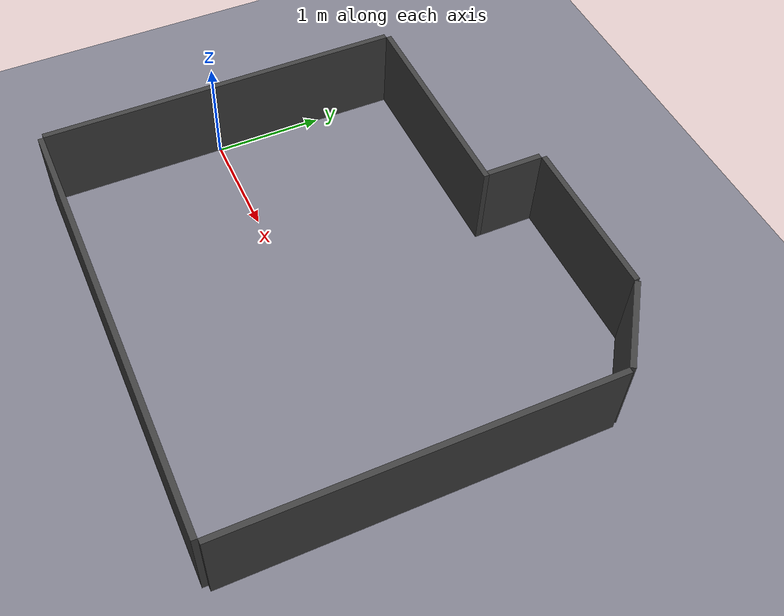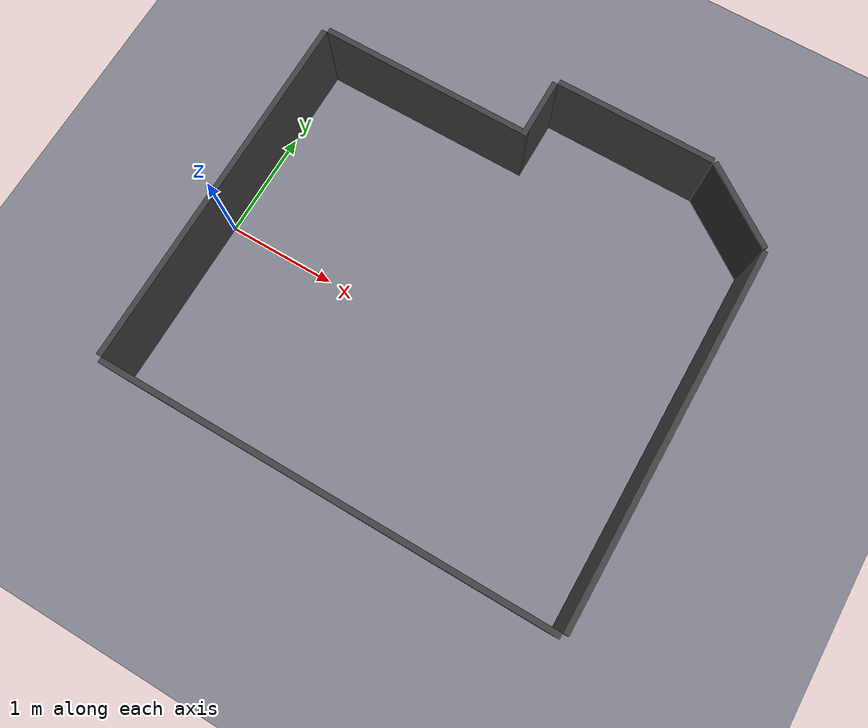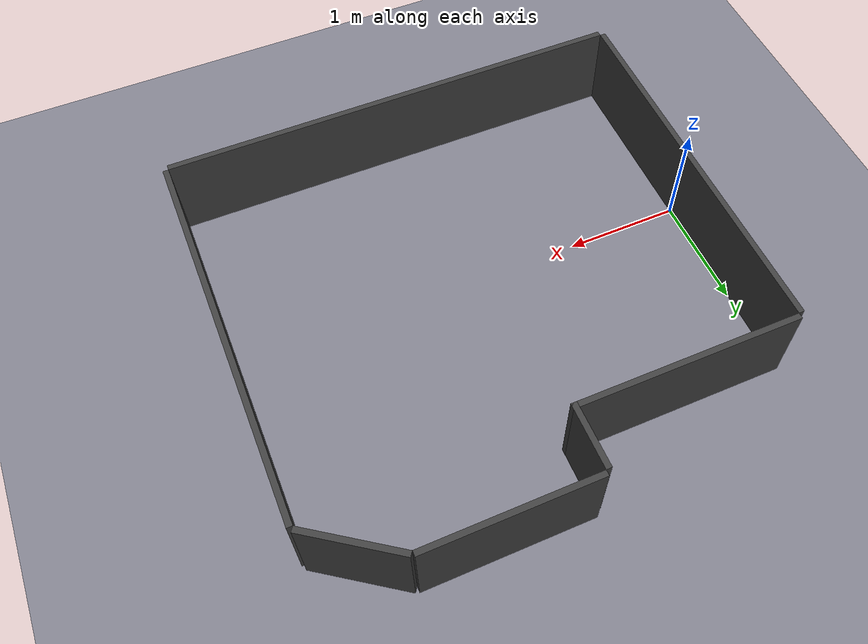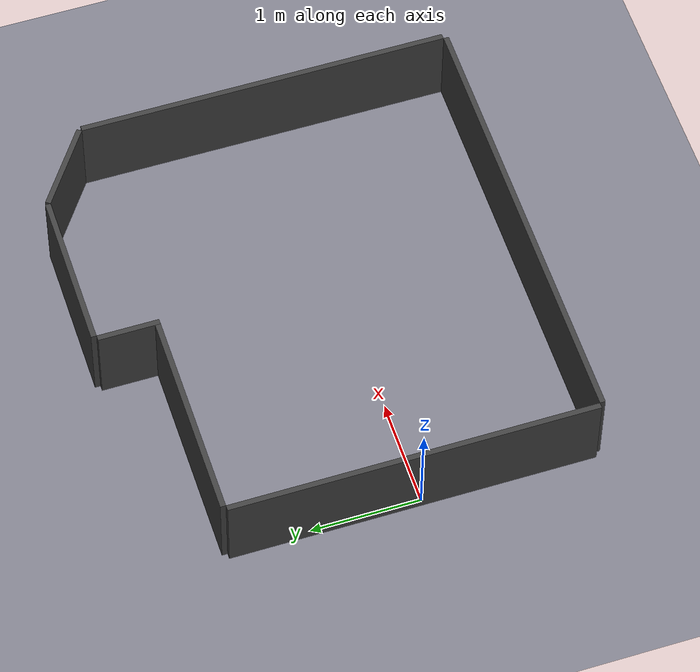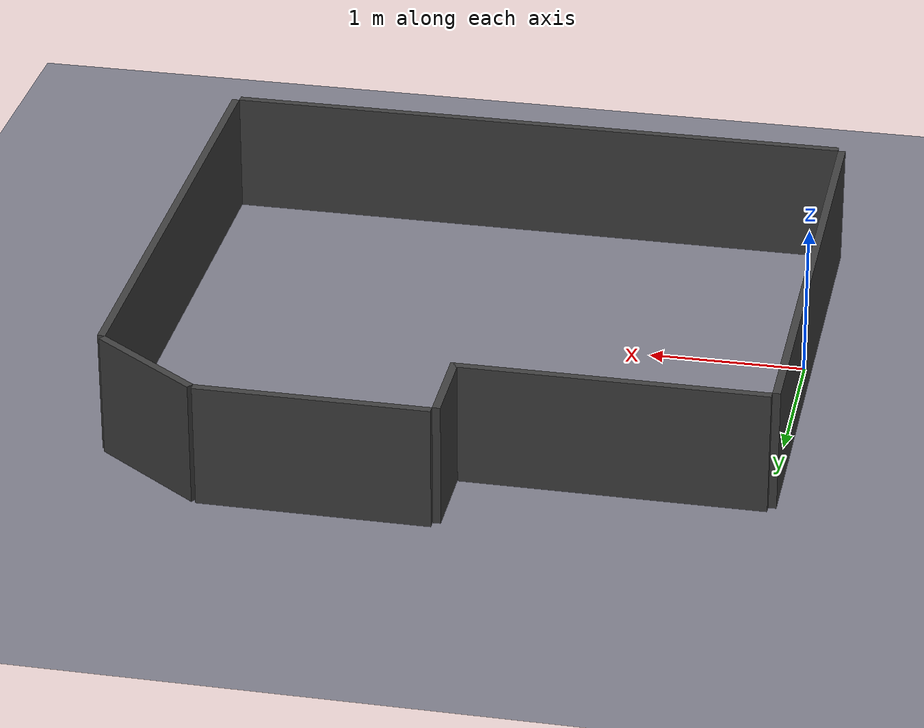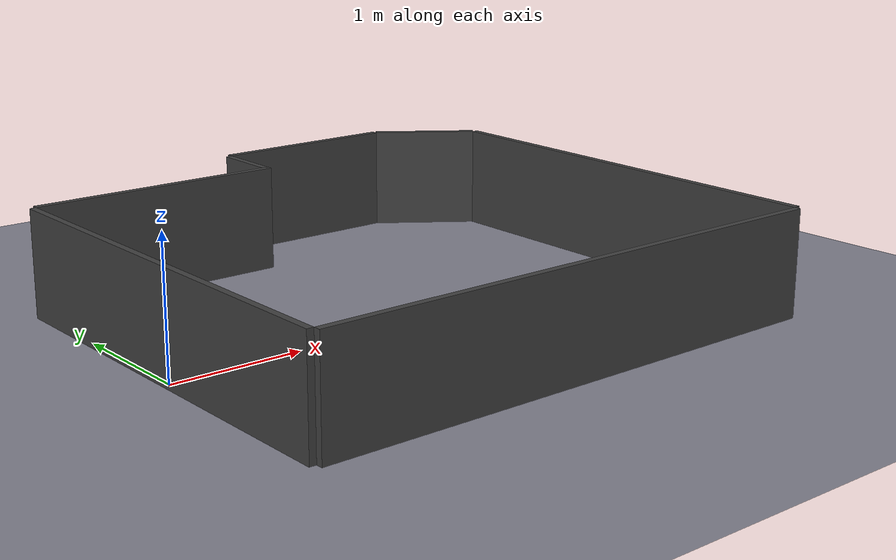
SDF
<?xml version="1.0" encoding="UTF-8"?>
<sdf version="1.9">
  <world name="kthspacelab">
    <physics type="ode">
      <max_step_size>0.006</max_step_size>
      <real_time_factor>1.0</real_time_factor>
      <real_time_update_rate>200</real_time_update_rate>
    </physics>

    <plugin
      filename="gz-sim-physics-system"
      name="gz::sim::systems::Physics">
    </plugin>
    <plugin
      filename="gz-sim-user-commands-system"
      name="gz::sim::systems::UserCommands">
    </plugin>
    <plugin
      filename="gz-sim-scene-broadcaster-system"
      name="gz::sim::systems::SceneBroadcaster">
    </plugin>
    <plugin
      filename="gz-sim-sensors-system"
      name="gz::sim::systems::Sensors">
      <render_engine>ogre2</render_engine>
    </plugin>
    <gravity>0 0 -9.8</gravity>
    <magnetic_field>6e-06 2.3e-05 -4.2e-05</magnetic_field>
    <atmosphere type="adiabatic"/>
    <scene>
      <grid>false</grid>
      <ambient>0.8 0.8 0.8 1</ambient>
      <background>0.05 0.05 0.07 1</background>
      <shadows>true</shadows>
    </scene>
    <model name="ground_plane">
      <static>true</static>
      <link name="link">
        <collision name="collision">
          <geometry>
            <plane>
              <normal>0 0 1</normal>
              <size>6 6</size>
            </plane>
          </geometry>
        </collision>
        <visual name="visual">
          <geometry>
            <plane>
              <normal>0 0 1</normal>
              <size>6 6</size>
            </plane>
          </geometry>
          <material>
            <ambient>0.95 0.95 0.95 1</ambient>
            <diffuse>0.5 0.5 0.55 1</diffuse>
            <specular>0.2 0.2 0.2 1</specular>
            <emissive>0 0 0 1</emissive>
          </material>
        </visual>
        <pose>2.0 0.5 0 0 0 0</pose>
        <enable_wind>false</enable_wind>
      </link>
      <pose>0 0 0 0 -0 0</pose>
      <self_collide>false</self_collide>
    </model>
    <light name="sunUTC" type="directional">
      <pose>0 0 500 0 -0 0</pose>
      <cast_shadows>true</cast_shadows>
      <intensity>1.5</intensity>
      <direction>0.2 0.6 -0.8</direction>
      <diffuse>1 1 0.98 1</diffuse>
      <specular>0.3 0.3 0.3 1</specular>
      <attenuation>
        <range>2000</range>
        <linear>0</linear>
        <constant>1</constant>
        <quadratic>0</quadratic>
      </attenuation>
    </light>
    <spherical_coordinates>
      <surface_model>EARTH_WGS84</surface_model>
      <world_frame_orientation>ENU</world_frame_orientation>
      <latitude_deg>47.397971057728974</latitude_deg>
      <longitude_deg> 8.546163739800146</longitude_deg>
      <elevation>0</elevation>
    </spherical_coordinates>

    <!-- KTH Space Robotics Lab Floor Area -->
    <model name="wall_perimeter">
      <static>true</static>
      <link name="segment_0">
        <pose>2.05000 -1.60500 0.400 0 0 0.00000</pose>
        <collision name="collision">
          <geometry>
            <box><size>4.10000 0.05 0.8</size></box>
          </geometry>
          <surface>
            <bounce>
              <restitution_coefficient>1.0</restitution_coefficient>
              <threshold>0.0</threshold>
            </bounce>
            <friction>
              <ode>
                <mu>0.0</mu>
                <mu2>0.0</mu2>
              </ode>
            </friction>
            <contact>
              <ode>
                <kp>10000</kp>
                <kd>500</kd>
              </ode>
            </contact>
          </surface>
        </collision>
        <visual name="visual">
          <geometry>
            <box><size>4.10000 0.05 0.8</size></box>
          </geometry>
          <material>
            <ambient>0.2 0.2 0.2 1</ambient>
            <diffuse>0.25 0.25 0.25 1</diffuse>
            <specular>0.05 0.05 0.05 1</specular>
            <emissive>0 0 0 1</emissive>
          </material>
        </visual>
      </link>
      <link name="segment_1">
        <pose>4.12500 0.12000 0.400 0 0 1.57080</pose>
        <collision name="collision">
          <geometry>
            <box><size>3.40000 0.05 0.8</size></box>
          </geometry>
          <surface>
            <bounce>
              <restitution_coefficient>1.0</restitution_coefficient>
              <threshold>0.0</threshold>
            </bounce>
            <friction>
              <ode>
                <mu>0.0</mu>
                <mu2>0.0</mu2>
              </ode>
            </friction>
            <contact>
              <ode>
                <kp>10000</kp>
                <kd>500</kd>
              </ode>
            </contact>
          </surface>
        </collision>
        <visual name="visual">
          <geometry>
            <box><size>3.40000 0.05 0.8</size></box>
          </geometry>
          <material>
            <ambient>0.2 0.2 0.2 1</ambient>
            <diffuse>0.25 0.25 0.25 1</diffuse>
            <specular>0.05 0.05 0.05 1</specular>
            <emissive>0 0 0 1</emissive>
          </material>
        </visual>
      </link>
      <link name="segment_2">
        <pose>3.77442 2.08042 0.400 0 0 2.52693</pose>
        <collision name="collision">
          <geometry>
            <box><size>0.83235 0.05 0.8</size></box>
          </geometry>
          <surface>
            <bounce>
              <restitution_coefficient>1.0</restitution_coefficient>
              <threshold>0.0</threshold>
            </bounce>
            <friction>
              <ode>
                <mu>0.0</mu>
                <mu2>0.0</mu2>
              </ode>
            </friction>
            <contact>
              <ode>
                <kp>10000</kp>
                <kd>500</kd>
              </ode>
            </contact>
          </surface>
        </collision>
        <visual name="visual">
          <geometry>
            <box><size>0.83235 0.05 0.8</size></box>
          </geometry>
          <material>
            <ambient>0.2 0.2 0.2 1</ambient>
            <diffuse>0.25 0.25 0.25 1</diffuse>
            <specular>0.05 0.05 0.05 1</specular>
            <emissive>0 0 0 1</emissive>
          </material>
        </visual>
      </link>
      <link name="segment_3">
        <pose>2.69000 2.32500 0.400 0 0 3.14159</pose>
        <collision name="collision">
          <geometry>
            <box><size>1.46000 0.05 0.8</size></box>
          </geometry>
          <surface>
            <bounce>
              <restitution_coefficient>1.0</restitution_coefficient>
              <threshold>0.0</threshold>
            </bounce>
            <friction>
              <ode>
                <mu>0.0</mu>
                <mu2>0.0</mu2>
              </ode>
            </friction>
            <contact>
              <ode>
                <kp>10000</kp>
                <kd>500</kd>
              </ode>
            </contact>
          </surface>
        </collision>
        <visual name="visual">
          <geometry>
            <box><size>1.46000 0.05 0.8</size></box>
          </geometry>
          <material>
            <ambient>0.2 0.2 0.2 1</ambient>
            <diffuse>0.25 0.25 0.25 1</diffuse>
            <specular>0.05 0.05 0.05 1</specular>
            <emissive>0 0 0 1</emissive>
          </material>
        </visual>
      </link>
      <link name="segment_4">
        <pose>1.93500 2.02000 0.400 0 0 -1.57080</pose>
        <collision name="collision">
          <geometry>
            <box><size>0.56000 0.05 0.8</size></box>
          </geometry>
          <surface>
            <bounce>
              <restitution_coefficient>1.0</restitution_coefficient>
              <threshold>0.0</threshold>
            </bounce>
            <friction>
              <ode>
                <mu>0.0</mu>
                <mu2>0.0</mu2>
              </ode>
            </friction>
            <contact>
              <ode>
                <kp>10000</kp>
                <kd>500</kd>
              </ode>
            </contact>
          </surface>
        </collision>
        <visual name="visual">
          <geometry>
            <box><size>0.56000 0.05 0.8</size></box>
          </geometry>
          <material>
            <ambient>0.2 0.2 0.2 1</ambient>
            <diffuse>0.25 0.25 0.25 1</diffuse>
            <specular>0.05 0.05 0.05 1</specular>
            <emissive>0 0 0 1</emissive>
          </material>
        </visual>
      </link>
      <link name="segment_5">
        <pose>0.98000 1.76500 0.400 0 0 3.14159</pose>
        <collision name="collision">
          <geometry>
            <box><size>1.96000 0.05 0.8</size></box>
          </geometry>
          <surface>
            <bounce>
              <restitution_coefficient>1.0</restitution_coefficient>
              <threshold>0.0</threshold>
            </bounce>
            <friction>
              <ode>
                <mu>0.0</mu>
                <mu2>0.0</mu2>
              </ode>
            </friction>
            <contact>
              <ode>
                <kp>10000</kp>
                <kd>500</kd>
              </ode>
            </contact>
          </surface>
        </collision>
        <visual name="visual">
          <geometry>
            <box><size>1.96000 0.05 0.8</size></box>
          </geometry>
          <material>
            <ambient>0.2 0.2 0.2 1</ambient>
            <diffuse>0.25 0.25 0.25 1</diffuse>
            <specular>0.05 0.05 0.05 1</specular>
            <emissive>0 0 0 1</emissive>
          </material>
        </visual>
      </link>
      <link name="segment_6">
        <pose>-0.02500 0.08000 0.400 0 0 -1.57080</pose>
        <collision name="collision">
          <geometry>
            <box><size>3.32000 0.05 0.8</size></box>
          </geometry>
          <surface>
            <bounce>
              <restitution_coefficient>1.0</restitution_coefficient>
              <threshold>0.0</threshold>
            </bounce>
            <friction>
              <ode>
                <mu>0.0</mu>
                <mu2>0.0</mu2>
              </ode>
            </friction>
            <contact>
              <ode>
                <kp>10000</kp>
                <kd>500</kd>
              </ode>
            </contact>
          </surface>
        </collision>
        <visual name="visual">
          <geometry>
            <box><size>3.32000 0.05 0.8</size></box>
          </geometry>
          <material>
            <ambient>0.2 0.2 0.2 1</ambient>
            <diffuse>0.25 0.25 0.25 1</diffuse>
            <specular>0.05 0.05 0.05 1</specular>
            <emissive>0 0 0 1</emissive>
          </material>
        </visual>
      </link>
    </model>
    <gui fullscreen="0">
      <plugin filename="MinimalScene" name="3D View">
        <gz-gui>
          <title>3D View</title>
          <property type="bool" key="showTitleBar">false</property>
          <property type="string" key="state">docked</property>
        </gz-gui>
        <engine>ogre2</engine>
        <scene>scene</scene>
        <ambient_light>0.4 0.4 0.4</ambient_light>
        <background_color>0.8 0.8 0.8</background_color>
        <camera_pose>-18 0 12 0 0.5 0.0</camera_pose>
      </plugin>
      <plugin filename="EntityContextMenuPlugin" name="Entity context menu">
        <gz-gui>
          <property key="state" type="string">floating</property>
          <property key="width" type="double">5</property>
          <property key="height" type="double">5</property>
          <property key="showTitleBar" type="bool">false</property>
        </gz-gui>
      </plugin>
      <plugin filename="GzSceneManager" name="Scene Manager">
        <gz-gui>
          <property key="resizable" type="bool">false</property>
          <property key="width" type="double">5</property>
          <property key="height" type="double">5</property>
          <property key="state" type="string">floating</property>
          <property key="showTitleBar" type="bool">false</property>
        </gz-gui>
      </plugin>
      <plugin filename="InteractiveViewControl" name="Interactive view control">
        <gz-gui>
          <property key="resizable" type="bool">false</property>
          <property key="width" type="double">5</property>
          <property key="height" type="double">5</property>
          <property key="state" type="string">floating</property>
          <property key="showTitleBar" type="bool">false</property>
        </gz-gui>
      </plugin>
      <plugin filename="CameraTracking" name="Camera Tracking">
        <gz-gui>
          <property key="resizable" type="bool">false</property>
          <property key="width" type="double">5</property>
          <property key="height" type="double">5</property>
          <property key="state" type="string">floating</property>
          <property key="showTitleBar" type="bool">false</property>
        </gz-gui>
      </plugin>
      <plugin filename="WorldControl" name="World control">
        <gz-gui>
          <title>World control</title>
          <property type="bool" key="showTitleBar">false</property>
          <property type="bool" key="resizable">false</property>
          <property type="double" key="height">72</property>
          <property type="double" key="z">1</property>
          <property type="string" key="state">floating</property>
          <anchors target="3D View">
            <line own="left" target="left"/>
            <line own="bottom" target="bottom"/>
          </anchors>
        </gz-gui>
        <play_pause>true</play_pause>
        <step>true</step>
        <start_paused>true</start_paused>
        <use_event>true</use_event>
      </plugin>
      <plugin filename="WorldStats" name="World stats">
        <gz-gui>
          <title>World stats</title>
          <property type="bool" key="showTitleBar">false</property>
          <property type="bool" key="resizable">false</property>
          <property type="double" key="height">110</property>
          <property type="double" key="width">290</property>
          <property type="double" key="z">1</property>
          <property type="string" key="state">floating</property>
          <anchors target="3D View">
            <line own="right" target="right"/>
            <line own="bottom" target="bottom"/>
          </anchors>
        </gz-gui>
        <sim_time>true</sim_time>
        <real_time>true</real_time>
        <real_time_factor>true</real_time_factor>
        <iterations>true</iterations>
      </plugin>
      <plugin filename="ImageDisplay" name="Bebop Camera">
        <gz-gui>
          <title>Bebop Camera</title>
          <property key="state" type="string">docked</property>
        </gz-gui>
        <topic>/world/kthspacelab/model/bebop1/model/parrot_bebop_2/link/body/sensor/rgb_camera_sensor/image</topic>
      </plugin>
      <plugin filename="ComponentInspector" name="Component inspector">
        <gz-gui>
          <property type="string" key="state">docked</property>
        </gz-gui>
      </plugin>
      <plugin filename="EntityTree" name="Entity tree">
        <gz-gui>
          <property type="string" key="state">docked</property>
        </gz-gui>
      </plugin>
    </gui>
  </world>
</sdf>
